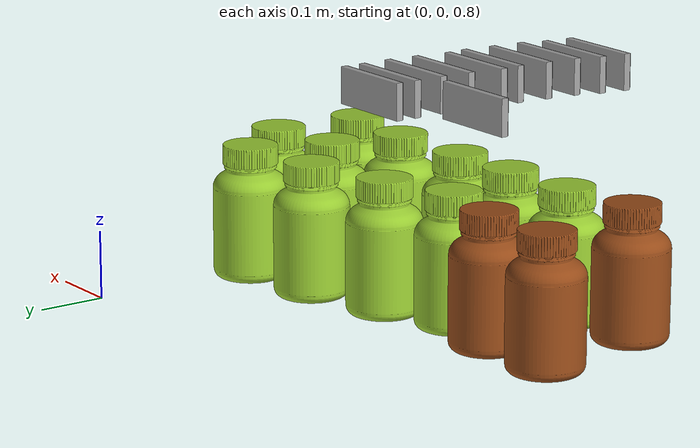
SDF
<sdf version="1.7">
 <world name="default">
  <model name="med_1_0_clone_2">
   <link name="link_0">
    <inertial>
     <mass>1</mass>
     <inertia>
      <ixx>0.166667</ixx>
      <ixy>0</ixy>
      <ixz>0</ixz>
      <iyy>0.166667</iyy>
      <iyz>0</iyz>
      <izz>0.166667</izz>
     </inertia>
    </inertial>
    <pose>0 -0.005 -0.025 0 -0 0</pose>
    <visual name="visual">
     <pose>0 0.005 0.025 0 -0 0</pose>
     <geometry><mesh><uri>model://med_1/meshes/med-1.dae</uri><scale>0.01 0.01 0.01</scale></mesh></geometry>
     <material>
      <shader type="pixel"><normal_map>__default__</normal_map></shader>
      <emissive>0 0 0 1</emissive>
     </material>
    </visual>
    <collision name="collision">
     <pose>0 0.005 0.025 0 -0 0</pose>
     <geometry><mesh><uri>model://med_1/meshes/med-1.dae</uri><scale>0.01 0.01 0.01</scale></mesh></geometry>
     <surface>
      <friction>
       <ode><mu>1</mu><mu2>1</mu2><fdir1>0 0 0</fdir1><slip1>0</slip1><slip2>0</slip2></ode>
       <torsional>
        <coefficient>1</coefficient>
        <patch_radius>0</patch_radius>
        <surface_radius>0</surface_radius>
        <use_patch_radius>1</use_patch_radius>
        <ode><slip>0</slip></ode>
       </torsional>
      </friction>
      <bounce><restitution_coefficient>0</restitution_coefficient><threshold>1e+06</threshold></bounce>
      <contact>
       <collide_without_contact>0</collide_without_contact>
       <collide_without_contact_bitmask>1</collide_without_contact_bitmask>
       <collide_bitmask>1</collide_bitmask>
       <ode>
        <soft_cfm>0</soft_cfm>
        <soft_erp>0.2</soft_erp>
        <kp>1e+13</kp>
        <kd>1</kd>
        <max_vel>0.01</max_vel>
        <min_depth>0</min_depth>
       </ode>
       <bullet>
        <split_impulse>1</split_impulse>
        <split_impulse_penetration_threshold>-0.01</split_impulse_penetration_threshold>
        <soft_cfm>0</soft_cfm>
        <soft_erp>0.2</soft_erp>
        <kp>1e+13</kp>
        <kd>1</kd>
       </bullet>
      </contact>
     </surface>
    </collision>
   </link>
   <static>0</static>
   <pose>-0.555283 -0.151315 1.20018 -2e-06 5e-06 -3.1318</pose>
  </model>
  <model name="med_1_0_clone_4">
   <link name="link_0">
    <inertial>
     <mass>1</mass>
     <inertia>
      <ixx>0.166667</ixx>
      <ixy>0</ixy>
      <ixz>0</ixz>
      <iyy>0.166667</iyy>
      <iyz>0</iyz>
      <izz>0.166667</izz>
     </inertia>
    </inertial>
    <pose>0 -0.005 -0.025 0 -0 0</pose>
    <visual name="visual">
     <pose>0 0.005 0.025 0 -0 0</pose>
     <geometry><mesh><uri>model://med_1/meshes/med-1.dae</uri><scale>0.01 0.01 0.01</scale></mesh></geometry>
     <material>
      <shader type="pixel"><normal_map>__default__</normal_map></shader>
      <emissive>0 0 0 1</emissive>
     </material>
    </visual>
    <collision name="collision">
     <pose>0 0.005 0.025 0 -0 0</pose>
     <geometry><mesh><uri>model://med_1/meshes/med-1.dae</uri><scale>0.01 0.01 0.01</scale></mesh></geometry>
     <surface>
      <friction>
       <ode><mu>1</mu><mu2>1</mu2><fdir1>0 0 0</fdir1><slip1>0</slip1><slip2>0</slip2></ode>
       <torsional>
        <coefficient>1</coefficient>
        <patch_radius>0</patch_radius>
        <surface_radius>0</surface_radius>
        <use_patch_radius>1</use_patch_radius>
        <ode><slip>0</slip></ode>
       </torsional>
      </friction>
      <bounce><restitution_coefficient>0</restitution_coefficient><threshold>1e+06</threshold></bounce>
      <contact>
       <collide_without_contact>0</collide_without_contact>
       <collide_without_contact_bitmask>1</collide_without_contact_bitmask>
       <collide_bitmask>1</collide_bitmask>
       <ode>
        <soft_cfm>0</soft_cfm>
        <soft_erp>0.2</soft_erp>
        <kp>1e+13</kp>
        <kd>1</kd>
        <max_vel>0.01</max_vel>
        <min_depth>0</min_depth>
       </ode>
       <bullet>
        <split_impulse>1</split_impulse>
        <split_impulse_penetration_threshold>-0.01</split_impulse_penetration_threshold>
        <soft_cfm>0</soft_cfm>
        <soft_erp>0.2</soft_erp>
        <kp>1e+13</kp>
        <kd>1</kd>
       </bullet>
      </contact>
     </surface>
    </collision>
   </link>
   <static>0</static>
   <pose>-0.567353 -0.241198 1.20018 7e-06 -1e-06 -3.1318</pose>
  </model>
  <model name="med_1_0_clone_6">
   <link name="link_0">
    <inertial>
     <mass>1</mass>
     <inertia>
      <ixx>0.166667</ixx>
      <ixy>0</ixy>
      <ixz>0</ixz>
      <iyy>0.166667</iyy>
      <iyz>0</iyz>
      <izz>0.166667</izz>
     </inertia>
    </inertial>
    <pose>0 -0.005 -0.025 0 -0 0</pose>
    <visual name="visual">
     <pose>0 0.005 0.025 0 -0 0</pose>
     <geometry><mesh><uri>model://med_1/meshes/med-1.dae</uri><scale>0.01 0.01 0.01</scale></mesh></geometry>
     <material>
      <shader type="pixel"><normal_map>__default__</normal_map></shader>
      <emissive>0 0 0 1</emissive>
     </material>
    </visual>
    <collision name="collision">
     <pose>0 0.005 0.025 0 -0 0</pose>
     <geometry><mesh><uri>model://med_1/meshes/med-1.dae</uri><scale>0.01 0.01 0.01</scale></mesh></geometry>
     <surface>
      <friction>
       <ode><mu>1</mu><mu2>1</mu2><fdir1>0 0 0</fdir1><slip1>0</slip1><slip2>0</slip2></ode>
       <torsional>
        <coefficient>1</coefficient>
        <patch_radius>0</patch_radius>
        <surface_radius>0</surface_radius>
        <use_patch_radius>1</use_patch_radius>
        <ode><slip>0</slip></ode>
       </torsional>
      </friction>
      <bounce><restitution_coefficient>0</restitution_coefficient><threshold>1e+06</threshold></bounce>
      <contact>
       <collide_without_contact>0</collide_without_contact>
       <collide_without_contact_bitmask>1</collide_without_contact_bitmask>
       <collide_bitmask>1</collide_bitmask>
       <ode>
        <soft_cfm>0</soft_cfm>
        <soft_erp>0.2</soft_erp>
        <kp>1e+13</kp>
        <kd>1</kd>
        <max_vel>0.01</max_vel>
        <min_depth>0</min_depth>
       </ode>
       <bullet>
        <split_impulse>1</split_impulse>
        <split_impulse_penetration_threshold>-0.01</split_impulse_penetration_threshold>
        <soft_cfm>0</soft_cfm>
        <soft_erp>0.2</soft_erp>
        <kp>1e+13</kp>
        <kd>1</kd>
       </bullet>
      </contact>
     </surface>
    </collision>
   </link>
   <static>0</static>
   <pose>-0.566184 -0.269641 1.20018 -2.5e-05 4e-06 -3.13179</pose>
  </model>
  <model name="med_1_0_clone_9">
   <link name="link_0">
    <inertial>
     <mass>1</mass>
     <inertia>
      <ixx>0.166667</ixx>
      <ixy>0</ixy>
      <ixz>0</ixz>
      <iyy>0.166667</iyy>
      <iyz>0</iyz>
      <izz>0.166667</izz>
     </inertia>
    </inertial>
    <pose>0 -0.005 -0.025 0 -0 0</pose>
    <visual name="visual">
     <pose>0 0.005 0.025 0 -0 0</pose>
     <geometry><mesh><uri>model://med_1/meshes/med-1.dae</uri><scale>0.01 0.01 0.01</scale></mesh></geometry>
     <material>
      <shader type="pixel"><normal_map>__default__</normal_map></shader>
      <emissive>0 0 0 1</emissive>
     </material>
    </visual>
    <collision name="collision">
     <pose>0 0.005 0.025 0 -0 0</pose>
     <geometry><mesh><uri>model://med_1/meshes/med-1.dae</uri><scale>0.01 0.01 0.01</scale></mesh></geometry>
     <surface>
      <friction>
       <ode><mu>1</mu><mu2>1</mu2><fdir1>0 0 0</fdir1><slip1>0</slip1><slip2>0</slip2></ode>
       <torsional>
        <coefficient>1</coefficient>
        <patch_radius>0</patch_radius>
        <surface_radius>0</surface_radius>
        <use_patch_radius>1</use_patch_radius>
        <ode><slip>0</slip></ode>
       </torsional>
      </friction>
      <bounce><restitution_coefficient>0</restitution_coefficient><threshold>1e+06</threshold></bounce>
      <contact>
       <collide_without_contact>0</collide_without_contact>
       <collide_without_contact_bitmask>1</collide_without_contact_bitmask>
       <collide_bitmask>1</collide_bitmask>
       <ode>
        <soft_cfm>0</soft_cfm>
        <soft_erp>0.2</soft_erp>
        <kp>1e+13</kp>
        <kd>1</kd>
        <max_vel>0.01</max_vel>
        <min_depth>0</min_depth>
       </ode>
       <bullet>
        <split_impulse>1</split_impulse>
        <split_impulse_penetration_threshold>-0.01</split_impulse_penetration_threshold>
        <soft_cfm>0</soft_cfm>
        <soft_erp>0.2</soft_erp>
        <kp>1e+13</kp>
        <kd>1</kd>
       </bullet>
      </contact>
     </surface>
    </collision>
   </link>
   <static>0</static>
   <pose>-0.55508 -0.110079 1.20018 1e-06 -0 -3.1318</pose>
  </model>
  <model name="med_1_0_clone_18">
   <link name="link_0">
    <inertial>
     <mass>1</mass>
     <inertia>
      <ixx>0.166667</ixx>
      <ixy>0</ixy>
      <ixz>0</ixz>
      <iyy>0.166667</iyy>
      <iyz>0</iyz>
      <izz>0.166667</izz>
     </inertia>
    </inertial>
    <pose>0 -0.005 -0.025 0 -0 0</pose>
    <visual name="visual">
     <pose>0 0.005 0.025 0 -0 0</pose>
     <geometry><mesh><uri>model://med_1/meshes/med-1.dae</uri><scale>0.01 0.01 0.01</scale></mesh></geometry>
     <material>
      <shader type="pixel"><normal_map>__default__</normal_map></shader>
      <emissive>0 0 0 1</emissive>
     </material>
    </visual>
    <collision name="collision">
     <pose>0 0.005 0.025 0 -0 0</pose>
     <geometry><mesh><uri>model://med_1/meshes/med-1.dae</uri><scale>0.01 0.01 0.01</scale></mesh></geometry>
     <surface>
      <friction>
       <ode><mu>1</mu><mu2>1</mu2><fdir1>0 0 0</fdir1><slip1>0</slip1><slip2>0</slip2></ode>
       <torsional>
        <coefficient>1</coefficient>
        <patch_radius>0</patch_radius>
        <surface_radius>0</surface_radius>
        <use_patch_radius>1</use_patch_radius>
        <ode><slip>0</slip></ode>
       </torsional>
      </friction>
      <bounce><restitution_coefficient>0</restitution_coefficient><threshold>1e+06</threshold></bounce>
      <contact>
       <collide_without_contact>0</collide_without_contact>
       <collide_without_contact_bitmask>1</collide_without_contact_bitmask>
       <collide_bitmask>1</collide_bitmask>
       <ode>
        <soft_cfm>0</soft_cfm>
        <soft_erp>0.2</soft_erp>
        <kp>1e+13</kp>
        <kd>1</kd>
        <max_vel>0.01</max_vel>
        <min_depth>0</min_depth>
       </ode>
       <bullet>
        <split_impulse>1</split_impulse>
        <split_impulse_penetration_threshold>-0.01</split_impulse_penetration_threshold>
        <soft_cfm>0</soft_cfm>
        <soft_erp>0.2</soft_erp>
        <kp>1e+13</kp>
        <kd>1</kd>
       </bullet>
      </contact>
     </surface>
    </collision>
   </link>
   <static>0</static>
   <pose>-0.698931 -0.13829 1.20019 1e-06 -2e-06 -3.13179</pose>
  </model>
  <model name="med_1_0_clone_22">
   <link name="link_0">
    <inertial>
     <mass>1</mass>
     <inertia>
      <ixx>0.166667</ixx>
      <ixy>0</ixy>
      <ixz>0</ixz>
      <iyy>0.166667</iyy>
      <iyz>0</iyz>
      <izz>0.166667</izz>
     </inertia>
    </inertial>
    <pose>0 -0.005 -0.025 0 -0 0</pose>
    <visual name="visual">
     <pose>0 0.005 0.025 0 -0 0</pose>
     <geometry><mesh><uri>model://med_1/meshes/med-1.dae</uri><scale>0.01 0.01 0.01</scale></mesh></geometry>
     <material>
      <shader type="pixel"><normal_map>__default__</normal_map></shader>
      <emissive>0 0 0 1</emissive>
     </material>
    </visual>
    <collision name="collision">
     <pose>0 0.005 0.025 0 -0 0</pose>
     <geometry><mesh><uri>model://med_1/meshes/med-1.dae</uri><scale>0.01 0.01 0.01</scale></mesh></geometry>
     <surface>
      <friction>
       <ode><mu>1</mu><mu2>1</mu2><fdir1>0 0 0</fdir1><slip1>0</slip1><slip2>0</slip2></ode>
       <torsional>
        <coefficient>1</coefficient>
        <patch_radius>0</patch_radius>
        <surface_radius>0</surface_radius>
        <use_patch_radius>1</use_patch_radius>
        <ode><slip>0</slip></ode>
       </torsional>
      </friction>
      <bounce><restitution_coefficient>0</restitution_coefficient><threshold>1e+06</threshold></bounce>
      <contact>
       <collide_without_contact>0</collide_without_contact>
       <collide_without_contact_bitmask>1</collide_without_contact_bitmask>
       <collide_bitmask>1</collide_bitmask>
       <ode>
        <soft_cfm>0</soft_cfm>
        <soft_erp>0.2</soft_erp>
        <kp>1e+13</kp>
        <kd>1</kd>
        <max_vel>0.01</max_vel>
        <min_depth>0</min_depth>
       </ode>
       <bullet>
        <split_impulse>1</split_impulse>
        <split_impulse_penetration_threshold>-0.01</split_impulse_penetration_threshold>
        <soft_cfm>0</soft_cfm>
        <soft_erp>0.2</soft_erp>
        <kp>1e+13</kp>
        <kd>1</kd>
       </bullet>
      </contact>
     </surface>
    </collision>
   </link>
   <static>0</static>
   <pose>-0.576751 -0.356545 1.20019 -1.2e-05 -0 -3.13179</pose>
  </model>
  <model name="med_1_0_clone_25">
   <link name="link_0">
    <inertial>
     <mass>1</mass>
     <inertia>
      <ixx>0.166667</ixx>
      <ixy>0</ixy>
      <ixz>0</ixz>
      <iyy>0.166667</iyy>
      <iyz>0</iyz>
      <izz>0.166667</izz>
     </inertia>
    </inertial>
    <pose>0 -0.005 -0.025 0 -0 0</pose>
    <visual name="visual">
     <pose>0 0.005 0.025 0 -0 0</pose>
     <geometry><mesh><uri>model://med_1/meshes/med-1.dae</uri><scale>0.01 0.01 0.01</scale></mesh></geometry>
     <material>
      <shader type="pixel"><normal_map>__default__</normal_map></shader>
      <emissive>0 0 0 1</emissive>
     </material>
    </visual>
    <collision name="collision">
     <pose>0 0.005 0.025 0 -0 0</pose>
     <geometry><mesh><uri>model://med_1/meshes/med-1.dae</uri><scale>0.01 0.01 0.01</scale></mesh></geometry>
     <surface>
      <friction>
       <ode><mu>1</mu><mu2>1</mu2><fdir1>0 0 0</fdir1><slip1>0</slip1><slip2>0</slip2></ode>
       <torsional>
        <coefficient>1</coefficient>
        <patch_radius>0</patch_radius>
        <surface_radius>0</surface_radius>
        <use_patch_radius>1</use_patch_radius>
        <ode><slip>0</slip></ode>
       </torsional>
      </friction>
      <bounce><restitution_coefficient>0</restitution_coefficient><threshold>1e+06</threshold></bounce>
      <contact>
       <collide_without_contact>0</collide_without_contact>
       <collide_without_contact_bitmask>1</collide_without_contact_bitmask>
       <collide_bitmask>1</collide_bitmask>
       <ode>
        <soft_cfm>0</soft_cfm>
        <soft_erp>0.2</soft_erp>
        <kp>1e+13</kp>
        <kd>1</kd>
        <max_vel>0.01</max_vel>
        <min_depth>0</min_depth>
       </ode>
       <bullet>
        <split_impulse>1</split_impulse>
        <split_impulse_penetration_threshold>-0.01</split_impulse_penetration_threshold>
        <soft_cfm>0</soft_cfm>
        <soft_erp>0.2</soft_erp>
        <kp>1e+13</kp>
        <kd>1</kd>
       </bullet>
      </contact>
     </surface>
    </collision>
   </link>
   <static>0</static>
   <pose>-0.593915 -0.427871 1.20018 -6e-06 0 -3.13179</pose>
  </model>
  <model name="med_1_0_clone_26">
   <link name="link_0">
    <inertial>
     <mass>1</mass>
     <inertia>
      <ixx>0.166667</ixx>
      <ixy>0</ixy>
      <ixz>0</ixz>
      <iyy>0.166667</iyy>
      <iyz>0</iyz>
      <izz>0.166667</izz>
     </inertia>
    </inertial>
    <pose>0 -0.005 -0.025 0 -0 0</pose>
    <visual name="visual">
     <pose>0 0.005 0.025 0 -0 0</pose>
     <geometry><mesh><uri>model://med_1/meshes/med-1.dae</uri><scale>0.01 0.01 0.01</scale></mesh></geometry>
     <material>
      <shader type="pixel"><normal_map>__default__</normal_map></shader>
      <emissive>0 0 0 1</emissive>
     </material>
    </visual>
    <collision name="collision">
     <pose>0 0.005 0.025 0 -0 0</pose>
     <geometry><mesh><uri>model://med_1/meshes/med-1.dae</uri><scale>0.01 0.01 0.01</scale></mesh></geometry>
     <surface>
      <friction>
       <ode><mu>1</mu><mu2>1</mu2><fdir1>0 0 0</fdir1><slip1>0</slip1><slip2>0</slip2></ode>
       <torsional>
        <coefficient>1</coefficient>
        <patch_radius>0</patch_radius>
        <surface_radius>0</surface_radius>
        <use_patch_radius>1</use_patch_radius>
        <ode><slip>0</slip></ode>
       </torsional>
      </friction>
      <bounce><restitution_coefficient>0</restitution_coefficient><threshold>1e+06</threshold></bounce>
      <contact>
       <collide_without_contact>0</collide_without_contact>
       <collide_without_contact_bitmask>1</collide_without_contact_bitmask>
       <collide_bitmask>1</collide_bitmask>
       <ode>
        <soft_cfm>0</soft_cfm>
        <soft_erp>0.2</soft_erp>
        <kp>1e+13</kp>
        <kd>1</kd>
        <max_vel>0.01</max_vel>
        <min_depth>0</min_depth>
       </ode>
       <bullet>
        <split_impulse>1</split_impulse>
        <split_impulse_penetration_threshold>-0.01</split_impulse_penetration_threshold>
        <soft_cfm>0</soft_cfm>
        <soft_erp>0.2</soft_erp>
        <kp>1e+13</kp>
        <kd>1</kd>
       </bullet>
      </contact>
     </surface>
    </collision>
   </link>
   <static>0</static>
   <pose>-0.587979 -0.390916 1.20019 0 2e-06 -3.13179</pose>
  </model>
  <model name="med_1_0_clone_34">
   <link name="link_0">
    <inertial>
     <mass>1</mass>
     <inertia>
      <ixx>0.166667</ixx>
      <ixy>0</ixy>
      <ixz>0</ixz>
      <iyy>0.166667</iyy>
      <iyz>0</iyz>
      <izz>0.166667</izz>
     </inertia>
    </inertial>
    <pose>0 -0.005 -0.025 0 -0 0</pose>
    <visual name="visual">
     <pose>0 0.005 0.025 0 -0 0</pose>
     <geometry><mesh><uri>model://med_1/meshes/med-1.dae</uri><scale>0.01 0.01 0.01</scale></mesh></geometry>
     <material>
      <shader type="pixel"><normal_map>__default__</normal_map></shader>
      <emissive>0 0 0 1</emissive>
     </material>
    </visual>
    <collision name="collision">
     <pose>0 0.005 0.025 0 -0 0</pose>
     <geometry><mesh><uri>model://med_1/meshes/med-1.dae</uri><scale>0.01 0.01 0.01</scale></mesh></geometry>
     <surface>
      <friction>
       <ode><mu>1</mu><mu2>1</mu2><fdir1>0 0 0</fdir1><slip1>0</slip1><slip2>0</slip2></ode>
       <torsional>
        <coefficient>1</coefficient>
        <patch_radius>0</patch_radius>
        <surface_radius>0</surface_radius>
        <use_patch_radius>1</use_patch_radius>
        <ode><slip>0</slip></ode>
       </torsional>
      </friction>
      <bounce><restitution_coefficient>0</restitution_coefficient><threshold>1e+06</threshold></bounce>
      <contact>
       <collide_without_contact>0</collide_without_contact>
       <collide_without_contact_bitmask>1</collide_without_contact_bitmask>
       <collide_bitmask>1</collide_bitmask>
       <ode>
        <soft_cfm>0</soft_cfm>
        <soft_erp>0.2</soft_erp>
        <kp>1e+13</kp>
        <kd>1</kd>
        <max_vel>0.01</max_vel>
        <min_depth>0</min_depth>
       </ode>
       <bullet>
        <split_impulse>1</split_impulse>
        <split_impulse_penetration_threshold>-0.01</split_impulse_penetration_threshold>
        <soft_cfm>0</soft_cfm>
        <soft_erp>0.2</soft_erp>
        <kp>1e+13</kp>
        <kd>1</kd>
       </bullet>
      </contact>
     </surface>
    </collision>
   </link>
   <static>0</static>
   <pose>-0.571396 -0.313119 1.20019 5e-06 1e-06 -3.13178</pose>
  </model>
  <model name="med_1_0_clone_37">
   <link name="link_0">
    <inertial>
     <mass>1</mass>
     <inertia>
      <ixx>0.166667</ixx>
      <ixy>0</ixy>
      <ixz>0</ixz>
      <iyy>0.166667</iyy>
      <iyz>0</iyz>
      <izz>0.166667</izz>
     </inertia>
    </inertial>
    <pose>0 -0.005 -0.025 0 -0 0</pose>
    <visual name="visual">
     <pose>0 0.005 0.025 0 -0 0</pose>
     <geometry><mesh><uri>model://med_1/meshes/med-1.dae</uri><scale>0.01 0.01 0.01</scale></mesh></geometry>
     <material>
      <shader type="pixel"><normal_map>__default__</normal_map></shader>
      <emissive>0 0 0 1</emissive>
     </material>
    </visual>
    <collision name="collision">
     <pose>0 0.005 0.025 0 -0 0</pose>
     <geometry><mesh><uri>model://med_1/meshes/med-1.dae</uri><scale>0.01 0.01 0.01</scale></mesh></geometry>
     <surface>
      <friction>
       <ode><mu>1</mu><mu2>1</mu2><fdir1>0 0 0</fdir1><slip1>0</slip1><slip2>0</slip2></ode>
       <torsional>
        <coefficient>1</coefficient>
        <patch_radius>0</patch_radius>
        <surface_radius>0</surface_radius>
        <use_patch_radius>1</use_patch_radius>
        <ode><slip>0</slip></ode>
       </torsional>
      </friction>
      <bounce><restitution_coefficient>0</restitution_coefficient><threshold>1e+06</threshold></bounce>
      <contact>
       <collide_without_contact>0</collide_without_contact>
       <collide_without_contact_bitmask>1</collide_without_contact_bitmask>
       <collide_bitmask>1</collide_bitmask>
       <ode>
        <soft_cfm>0</soft_cfm>
        <soft_erp>0.2</soft_erp>
        <kp>1e+13</kp>
        <kd>1</kd>
        <max_vel>0.01</max_vel>
        <min_depth>0</min_depth>
       </ode>
       <bullet>
        <split_impulse>1</split_impulse>
        <split_impulse_penetration_threshold>-0.01</split_impulse_penetration_threshold>
        <soft_cfm>0</soft_cfm>
        <soft_erp>0.2</soft_erp>
        <kp>1e+13</kp>
        <kd>1</kd>
       </bullet>
      </contact>
     </surface>
    </collision>
   </link>
   <static>0</static>
   <pose>-0.559642 -0.193357 1.20018 -1e-06 -0 -3.13179</pose>
  </model>
  <model name="med_1_0_clone_41">
   <link name="link_0">
    <inertial>
     <mass>1</mass>
     <inertia>
      <ixx>0.166667</ixx>
      <ixy>0</ixy>
      <ixz>0</ixz>
      <iyy>0.166667</iyy>
      <iyz>0</iyz>
      <izz>0.166667</izz>
     </inertia>
    </inertial>
    <pose>0 -0.005 -0.025 0 -0 0</pose>
    <visual name="visual">
     <pose>0 0.005 0.025 0 -0 0</pose>
     <geometry><mesh><uri>model://med_1/meshes/med-1.dae</uri><scale>0.01 0.01 0.01</scale></mesh></geometry>
     <material>
      <shader type="pixel"><normal_map>__default__</normal_map></shader>
      <emissive>0 0 0 1</emissive>
     </material>
    </visual>
    <collision name="collision">
     <pose>0 0.005 0.025 0 -0 0</pose>
     <geometry><mesh><uri>model://med_1/meshes/med-1.dae</uri><scale>0.01 0.01 0.01</scale></mesh></geometry>
     <surface>
      <friction>
       <ode><mu>1</mu><mu2>1</mu2><fdir1>0 0 0</fdir1><slip1>0</slip1><slip2>0</slip2></ode>
       <torsional>
        <coefficient>1</coefficient>
        <patch_radius>0</patch_radius>
        <surface_radius>0</surface_radius>
        <use_patch_radius>1</use_patch_radius>
        <ode><slip>0</slip></ode>
       </torsional>
      </friction>
      <bounce><restitution_coefficient>0</restitution_coefficient><threshold>1e+06</threshold></bounce>
      <contact>
       <collide_without_contact>0</collide_without_contact>
       <collide_without_contact_bitmask>1</collide_without_contact_bitmask>
       <collide_bitmask>1</collide_bitmask>
       <ode>
        <soft_cfm>0</soft_cfm>
        <soft_erp>0.2</soft_erp>
        <kp>1e+13</kp>
        <kd>1</kd>
        <max_vel>0.01</max_vel>
        <min_depth>0</min_depth>
       </ode>
       <bullet>
        <split_impulse>1</split_impulse>
        <split_impulse_penetration_threshold>-0.01</split_impulse_penetration_threshold>
        <soft_cfm>0</soft_cfm>
        <soft_erp>0.2</soft_erp>
        <kp>1e+13</kp>
        <kd>1</kd>
       </bullet>
      </contact>
     </surface>
    </collision>
   </link>
   <static>0</static>
   <pose>-0.554126 -0.08184 1.20018 -1.8e-05 0 -3.13178</pose>
  </model>
  <model name="Medicine_Bottle">
   <static>0</static>
   <link name="medicine_bottle_link">
    <inertial>
     <mass>0.05</mass>
     <inertia><ixx>1e-05</ixx><ixy>0</ixy><ixz>0</ixz><iyy>1e-05</iyy><iyz>0</iyz><izz>1e-05</izz></inertia>
    </inertial>
    <visual name="visual">
     <geometry>
      <mesh><uri>model://Medicine_Bottle/meshes/Medicine_Bottle.stl</uri><scale>0.1 0.1 0.1</scale></mesh>
     </geometry>
     <material>
      <ambient>0.3 0.4 0.1 1</ambient>
      <diffuse>0.6 0.8 0.2 1</diffuse>
      <specular>0.2 0.3 0.1 1</specular>
     </material>
    </visual>
    <collision name="collision">
     <geometry>
      <mesh><uri>model://Medicine_Bottle/meshes/Medicine_Bottle.stl</uri><scale>0.1 0.1 0.1</scale></mesh>
     </geometry>
    </collision>
   </link>
   <pose>-0.305122 -0.414018 0.824988 -0.00016 -0.000412 1.52581</pose>
  </model>
  <model name="Medicine_Bottle_0">
   <static>0</static>
   <link name="medicine_bottle_link">
    <inertial>
     <mass>0.05</mass>
     <inertia><ixx>1e-05</ixx><ixy>0</ixy><ixz>0</ixz><iyy>1e-05</iyy><iyz>0</iyz><izz>1e-05</izz></inertia>
    </inertial>
    <visual name="visual">
     <geometry>
      <mesh><uri>model://Medicine_Bottle/meshes/Medicine_Bottle.stl</uri><scale>0.1 0.1 0.1</scale></mesh>
     </geometry>
     <material>
      <ambient>0.3 0.4 0.1 1</ambient>
      <diffuse>0.6 0.8 0.2 1</diffuse>
      <specular>0.2 0.3 0.1 1</specular>
     </material>
    </visual>
    <collision name="collision">
     <geometry>
      <mesh><uri>model://Medicine_Bottle/meshes/Medicine_Bottle.stl</uri><scale>0.1 0.1 0.1</scale></mesh>
     </geometry>
    </collision>
   </link>
   <pose>-0.230111 -0.208364 0.824988 -0.00016 -0.000412 0.050802</pose>
  </model>
  <model name="Medicine_Bottle_0_clone_0">
   <static>0</static>
   <link name="medicine_bottle_link">
    <inertial>
     <mass>0.05</mass>
     <inertia><ixx>1e-05</ixx><ixy>0</ixy><ixz>0</ixz><iyy>1e-05</iyy><iyz>0</iyz><izz>1e-05</izz></inertia>
    </inertial>
    <visual name="visual">
     <geometry>
      <mesh><uri>model://Medicine_Bottle/meshes/Medicine_Bottle.stl</uri><scale>0.1 0.1 0.1</scale></mesh>
     </geometry>
     <material>
      <ambient>0.3 0.4 0.1 1</ambient>
      <diffuse>0.6 0.8 0.2 1</diffuse>
      <specular>0.2 0.3 0.1 1</specular>
     </material>
    </visual>
    <collision name="collision">
     <geometry>
      <mesh><uri>model://Medicine_Bottle/meshes/Medicine_Bottle.stl</uri><scale>0.1 0.1 0.1</scale></mesh>
     </geometry>
    </collision>
   </link>
   <pose>-0.540109 -0.417957 0.824978 -0.00016 -0.000412 0.101289</pose>
  </model>
  <model name="Medicine_Bottle_0_clone_3">
   <static>0</static>
   <link name="medicine_bottle_link">
    <inertial>
     <mass>0.05</mass>
     <inertia><ixx>1e-05</ixx><ixy>0</ixy><ixz>0</ixz><iyy>1e-05</iyy><iyz>0</iyz><izz>1e-05</izz></inertia>
    </inertial>
    <visual name="visual">
     <geometry>
      <mesh><uri>model://Medicine_Bottle/meshes/Medicine_Bottle.stl</uri><scale>0.1 0.1 0.1</scale></mesh>
     </geometry>
     <material>
      <ambient>0.3 0.4 0.1 1</ambient>
      <diffuse>0.6 0.8 0.2 1</diffuse>
      <specular>0.2 0.3 0.1 1</specular>
     </material>
    </visual>
    <collision name="collision">
     <geometry>
      <mesh><uri>model://Medicine_Bottle/meshes/Medicine_Bottle.stl</uri><scale>0.1 0.1 0.1</scale></mesh>
     </geometry>
    </collision>
   </link>
   <pose>-0.417967 -0.416279 0.824978 -0.00016 -0.000412 0.019199</pose>
  </model>
  <model name="Medicine_Bottle_0_clone_4">
   <static>0</static>
   <link name="medicine_bottle_link">
    <inertial>
     <mass>0.05</mass>
     <inertia><ixx>1e-05</ixx><ixy>0</ixy><ixz>0</ixz><iyy>1e-05</iyy><iyz>0</iyz><izz>1e-05</izz></inertia>
    </inertial>
    <visual name="visual">
     <geometry>
      <mesh><uri>model://Medicine_Bottle/meshes/Medicine_Bottle.stl</uri><scale>0.1 0.1 0.1</scale></mesh>
     </geometry>
     <material>
      <ambient>0.3 0.4 0.1 1</ambient>
      <diffuse>0.6 0.8 0.2 1</diffuse>
      <specular>0.2 0.3 0.1 1</specular>
     </material>
    </visual>
    <collision name="collision">
     <geometry>
      <mesh><uri>model://Medicine_Bottle/meshes/Medicine_Bottle.stl</uri><scale>0.1 0.1 0.1</scale></mesh>
     </geometry>
    </collision>
   </link>
   <pose>-0.144463 -0.304873 0.824988 -0.00016 -0.000412 -0.08032</pose>
  </model>
  <model name="Medicine_Bottle_0_clone_5">
   <static>0</static>
   <link name="medicine_bottle_link">
    <inertial>
     <mass>0.05</mass>
     <inertia><ixx>1e-05</ixx><ixy>0</ixy><ixz>0</ixz><iyy>1e-05</iyy><iyz>0</iyz><izz>1e-05</izz></inertia>
    </inertial>
    <visual name="visual">
     <geometry>
      <mesh><uri>model://Medicine_Bottle/meshes/Medicine_Bottle.stl</uri><scale>0.1 0.1 0.1</scale></mesh>
     </geometry>
     <material>
      <ambient>0.3 0.4 0.1 1</ambient>
      <diffuse>0.6 0.8 0.2 1</diffuse>
      <specular>0.2 0.3 0.1 1</specular>
     </material>
    </visual>
    <collision name="collision">
     <geometry>
      <mesh><uri>model://Medicine_Bottle/meshes/Medicine_Bottle.stl</uri><scale>0.1 0.1 0.1</scale></mesh>
     </geometry>
    </collision>
   </link>
   <pose>-0.098497 -0.193553 0.824988 -0.00016 -0.000412 0.135179</pose>
  </model>
  <model name="Medicine_Bottle_0_clone_9">
   <static>0</static>
   <link name="medicine_bottle_link">
    <inertial>
     <mass>0.05</mass>
     <inertia><ixx>1e-05</ixx><ixy>0</ixy><ixz>0</ixz><iyy>1e-05</iyy><iyz>0</iyz><izz>1e-05</izz></inertia>
    </inertial>
    <visual name="visual">
     <geometry>
      <mesh><uri>model://Medicine_Bottle/meshes/Medicine_Bottle.stl</uri><scale>0.1 0.1 0.1</scale></mesh>
     </geometry>
     <material>
      <ambient>0.3 0.4 0.1 1</ambient>
      <diffuse>0.6 0.8 0.2 1</diffuse>
      <specular>0.2 0.3 0.1 1</specular>
     </material>
    </visual>
    <collision name="collision">
     <geometry>
      <mesh><uri>model://Medicine_Bottle/meshes/Medicine_Bottle.stl</uri><scale>0.1 0.1 0.1</scale></mesh>
     </geometry>
    </collision>
   </link>
   <pose>-0.469278 -0.277089 0.824988 0.00019 -0.000342 1.29547</pose>
  </model>
  <model name="Medicine_Bottle_0_clone_10">
   <static>0</static>
   <link name="medicine_bottle_link">
    <inertial>
     <mass>0.05</mass>
     <inertia><ixx>1e-05</ixx><ixy>0</ixy><ixz>0</ixz><iyy>1e-05</iyy><iyz>0</iyz><izz>1e-05</izz></inertia>
    </inertial>
    <visual name="visual">
     <geometry>
      <mesh><uri>model://Medicine_Bottle/meshes/Medicine_Bottle.stl</uri><scale>0.1 0.1 0.1</scale></mesh>
     </geometry>
     <material>
      <ambient>0.3 0.4 0.1 1</ambient>
      <diffuse>0.6 0.8 0.2 1</diffuse>
      <specular>0.2 0.3 0.1 1</specular>
     </material>
    </visual>
    <collision name="collision">
     <geometry>
      <mesh><uri>model://Medicine_Bottle/meshes/Medicine_Bottle.stl</uri><scale>0.1 0.1 0.1</scale></mesh>
     </geometry>
    </collision>
   </link>
   <pose>-0.359615 -0.240746 0.824988 -0.00016 -0.000412 -1.19508</pose>
  </model>
  <model name="Medicine_Bottle_0_clone_12">
   <static>0</static>
   <link name="medicine_bottle_link">
    <inertial>
     <mass>0.05</mass>
     <inertia><ixx>1e-05</ixx><ixy>0</ixy><ixz>0</ixz><iyy>1e-05</iyy><iyz>0</iyz><izz>1e-05</izz></inertia>
    </inertial>
    <visual name="visual">
     <geometry>
      <mesh><uri>model://Medicine_Bottle/meshes/Medicine_Bottle.stl</uri><scale>0.1 0.1 0.1</scale></mesh>
     </geometry>
     <material>
      <ambient>0.3 0.4 0.1 1</ambient>
      <diffuse>0.6 0.8 0.2 1</diffuse>
      <specular>0.2 0.3 0.1 1</specular>
     </material>
    </visual>
    <collision name="collision">
     <geometry>
      <mesh><uri>model://Medicine_Bottle/meshes/Medicine_Bottle.stl</uri><scale>0.1 0.1 0.1</scale></mesh>
     </geometry>
    </collision>
   </link>
   <pose>-0.168115 -0.410462 0.824988 -0.000161 -0.000412 0.072944</pose>
  </model>
  <model name="Medicine_Bottle_0_clone_12_clone">
   <static>0</static>
   <link name="medicine_bottle_link">
    <inertial>
     <mass>0.05</mass>
     <inertia><ixx>1e-05</ixx><ixy>0</ixy><ixz>0</ixz><iyy>1e-05</iyy><iyz>0</iyz><izz>1e-05</izz></inertia>
    </inertial>
    <visual name="visual">
     <geometry>
      <mesh><uri>model://Medicine_Bottle/meshes/Medicine_Bottle.stl</uri><scale>0.1 0.1 0.1</scale></mesh>
     </geometry>
     <material>
      <ambient>0.3 0.4 0.1 1</ambient>
      <diffuse>0.6 0.8 0.2 1</diffuse>
      <specular>0.2 0.3 0.1 1</specular>
     </material>
    </visual>
    <collision name="collision">
     <geometry>
      <mesh><uri>model://Medicine_Bottle/meshes/Medicine_Bottle.stl</uri><scale>0.1 0.1 0.1</scale></mesh>
     </geometry>
    </collision>
   </link>
   <pose>-0.043408 -0.42286 0.824987 -0.00016 -0.000412 -0.012505</pose>
  </model>
  <model name="Medicine_Bottle_0_clone_0_clone">
   <static>0</static>
   <link name="medicine_bottle_link">
    <inertial>
     <mass>0.05</mass>
     <inertia><ixx>1e-05</ixx><ixy>0</ixy><ixz>0</ixz><iyy>1e-05</iyy><iyz>0</iyz><izz>1e-05</izz></inertia>
    </inertial>
    <visual name="visual">
     <geometry>
      <mesh><uri>model://Medicine_Bottle/meshes/Medicine_Bottle.stl</uri><scale>0.1 0.1 0.1</scale></mesh>
     </geometry>
     <material>
      <ambient>0.3 0.4 0.1 1</ambient>
      <diffuse>0.6 0.8 0.2 1</diffuse>
      <specular>0.2 0.3 0.1 1</specular>
     </material>
    </visual>
    <collision name="collision">
     <geometry>
      <mesh><uri>model://Medicine_Bottle/meshes/Medicine_Bottle.stl</uri><scale>0.1 0.1 0.1</scale></mesh>
     </geometry>
    </collision>
   </link>
   <pose>-0.031173 -0.289188 0.824978 -0.00016 -0.000412 0.101289</pose>
  </model>
  <model name="Medicine_Bottle_1_clone">
   <static>0</static>
   <link name="medicine_bottle_link">
    <inertial>
     <mass>0.05</mass>
     <inertia><ixx>1e-05</ixx><ixy>0</ixy><ixz>0</ixz><iyy>1e-05</iyy><iyz>0</iyz><izz>1e-05</izz></inertia>
    </inertial>
    <visual name="visual">
     <geometry>
      <mesh><uri>model://Medicine_Bottle/meshes/Medicine_Bottle.stl</uri><scale>0.1 0.1 0.1</scale></mesh>
     </geometry>
     <material>
      <ambient>0.3 0.2 0.05 1</ambient>
      <diffuse>0.6 0.3 0.1 1</diffuse>
      <specular>0.2 0.2 0.2 1</specular>
      <emissive>0 0 0 1</emissive>
     </material>
    </visual>
    <collision name="collision">
     <geometry>
      <mesh><uri>model://Medicine_Bottle/meshes/Medicine_Bottle.stl</uri><scale>0.1 0.1 0.1</scale></mesh>
     </geometry>
    </collision>
   </link>
   <pose>-0.575178 -0.25501 0.824988 -0.000327 -0.000975 0.059922</pose>
  </model>
  <model name="Medicine_Bottle_1_clone_0">
   <static>0</static>
   <link name="medicine_bottle_link">
    <inertial>
     <mass>0.05</mass>
     <inertia><ixx>1e-05</ixx><ixy>0</ixy><ixz>0</ixz><iyy>1e-05</iyy><iyz>0</iyz><izz>1e-05</izz></inertia>
    </inertial>
    <visual name="visual">
     <geometry>
      <mesh><uri>model://Medicine_Bottle/meshes/Medicine_Bottle.stl</uri><scale>0.1 0.1 0.1</scale></mesh>
     </geometry>
     <material>
      <ambient>0.3 0.2 0.05 1</ambient>
      <diffuse>0.6 0.3 0.1 1</diffuse>
      <specular>0.2 0.2 0.2 1</specular>
      <emissive>0 0 0 1</emissive>
     </material>
    </visual>
    <collision name="collision">
     <geometry>
      <mesh><uri>model://Medicine_Bottle/meshes/Medicine_Bottle.stl</uri><scale>0.1 0.1 0.1</scale></mesh>
     </geometry>
    </collision>
   </link>
   <pose>-0.659652 -0.433119 0.824988 -0.00016 -0.000412 -0.007108</pose>
  </model>
  <model name="Medicine_Bottle_1_clone_1">
   <static>0</static>
   <link name="medicine_bottle_link">
    <inertial>
     <mass>0.05</mass>
     <inertia><ixx>1e-05</ixx><ixy>0</ixy><ixz>0</ixz><iyy>1e-05</iyy><iyz>0</iyz><izz>1e-05</izz></inertia>
    </inertial>
    <visual name="visual">
     <geometry>
      <mesh><uri>model://Medicine_Bottle/meshes/Medicine_Bottle.stl</uri><scale>0.1 0.1 0.1</scale></mesh>
     </geometry>
     <material>
      <ambient>0.3 0.2 0.05 1</ambient>
      <diffuse>0.6 0.3 0.1 1</diffuse>
      <specular>0.2 0.2 0.2 1</specular>
      <emissive>0 0 0 1</emissive>
     </material>
    </visual>
    <collision name="collision">
     <geometry>
      <mesh><uri>model://Medicine_Bottle/meshes/Medicine_Bottle.stl</uri><scale>0.1 0.1 0.1</scale></mesh>
     </geometry>
    </collision>
   </link>
   <pose>-0.697336 -0.255238 0.824988 -0.00016 -0.000412 -0.007109</pose>
  </model>
 </world>
</sdf>
